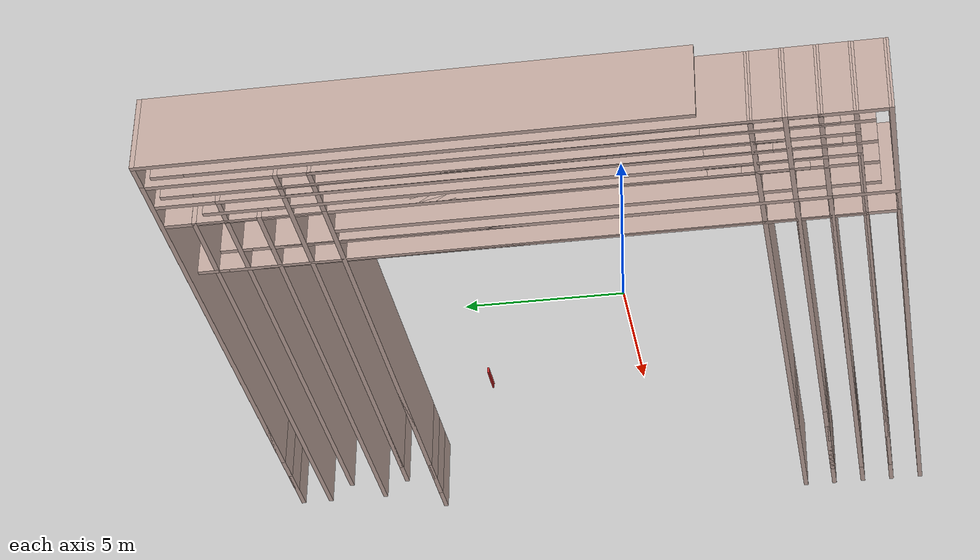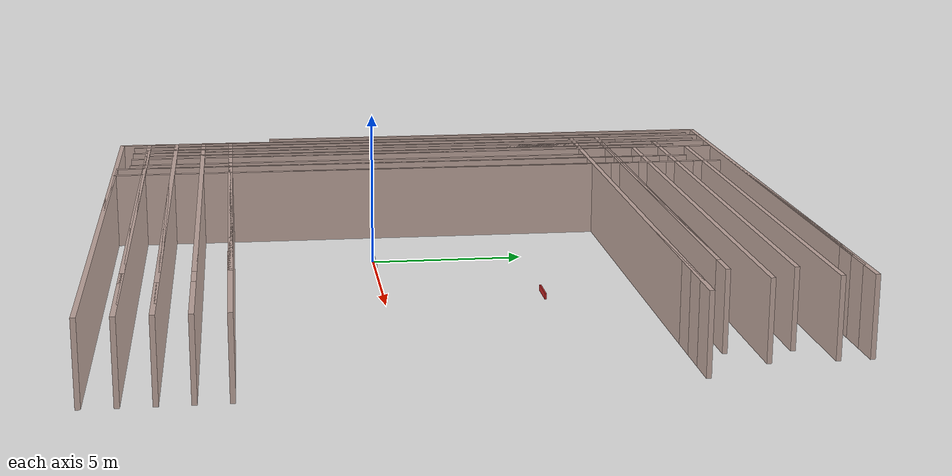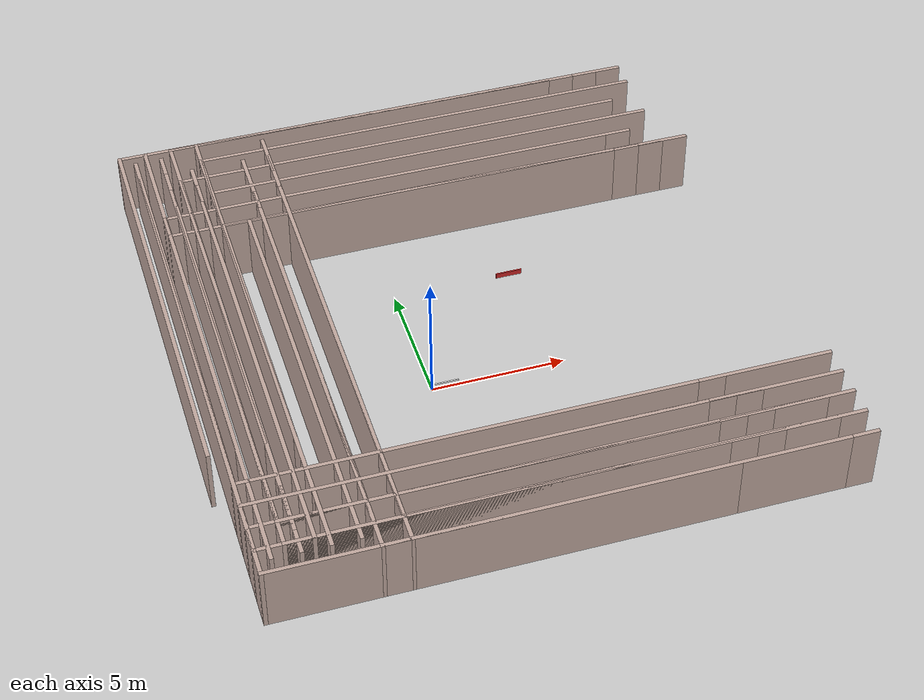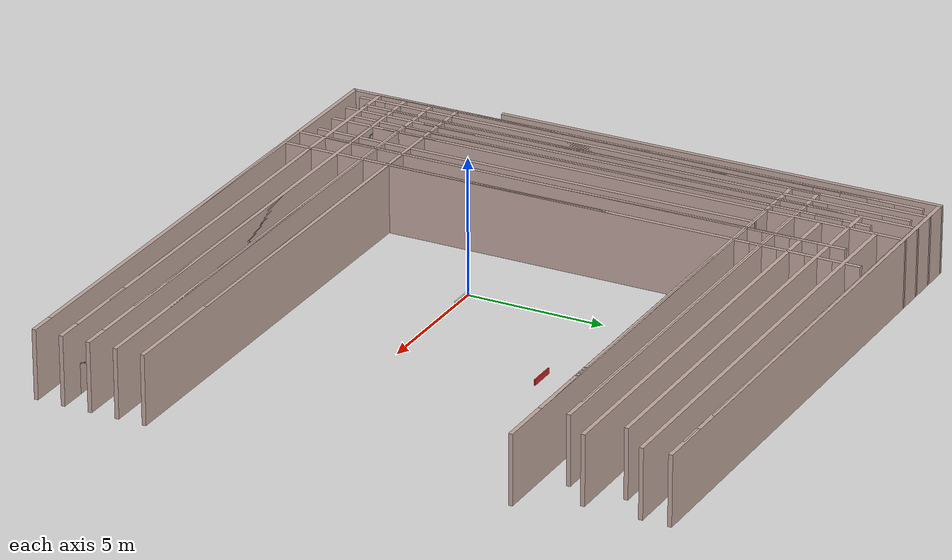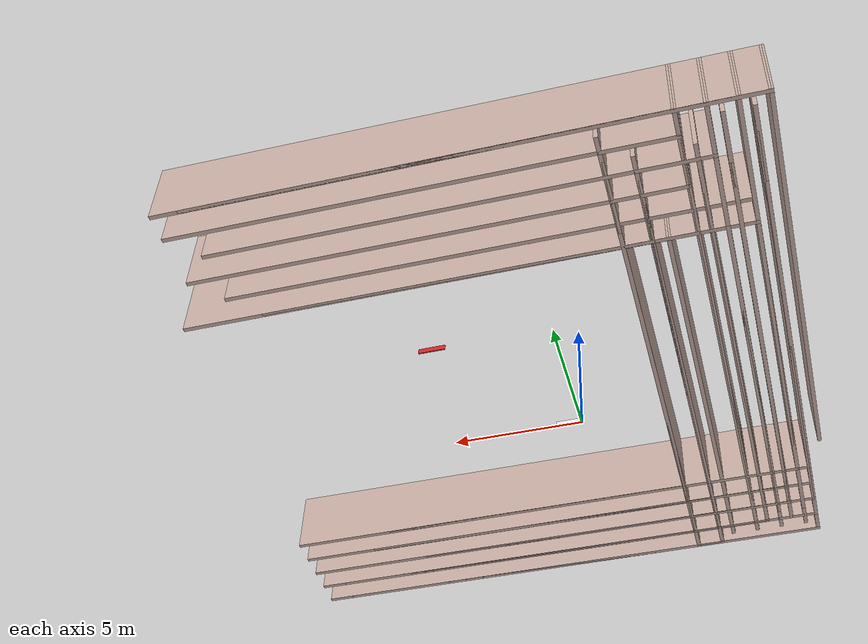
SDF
<?xml version="1.0" ?>
<sdf version="1.7">
    <model name="labyrinth">

			<include><name>0_4v</name><uri>model://wall</uri><pose>0 4 0 0 0 1.5707963267948966</pose></include>

			<include><name>0_5h</name><uri>model://wall</uri><pose>0 5 0 0 0 0</pose></include>

			<include><name>0_3v</name><uri>model://wall</uri><pose>0 3 0 0 0 1.5707963267948966</pose></include>

			<include><name>0_2v</name><uri>model://wall</uri><pose>0 2 0 0 0 1.5707963267948966</pose></include>

			<include><name>0_1v</name><uri>model://wall</uri><pose>0 1 0 0 0 1.5707963267948966</pose></include>

			<include><name>0_0h</name><uri>model://wall_White</uri><pose>0 0 0 0 0 0</pose></include>

			<include><name>0_0v</name><uri>model://wall</uri><pose>0 0 0 0 0 1.5707963267948966</pose></include>

			<include><name>1_4v</name><uri>model://wall</uri><pose>1 4 0 0 0 1.5707963267948966</pose></include>

			<include><name>1_5h</name><uri>model://wall</uri><pose>1 5 0 0 0 0</pose></include>

			<include><name>1_3v</name><uri>model://wall</uri><pose>1 3 0 0 0 1.5707963267948966</pose></include>

			<include><name>1_2v</name><uri>model://wall</uri><pose>1 2 0 0 0 1.5707963267948966</pose></include>

			<include><name>1_1h</name><uri>model://wall</uri><pose>1 1 0 0 0 0</pose></include>

			<include><name>1_1v</name><uri>model://wall</uri><pose>1 1 0 0 0 1.5707963267948966</pose></include>

			<include><name>1_0h</name><uri>model://wall</uri><pose>1 0 0 0 0 0</pose></include>

			<include><name>2_5h</name><uri>model://wall</uri><pose>2 5 0 0 0 0</pose></include>

			<include><name>2_3h</name><uri>model://wall</uri><pose>2 3 0 0 0 0</pose></include>

			<include><name>2_3v</name><uri>model://wall</uri><pose>2 3 0 0 0 1.5707963267948966</pose></include>

			<include><name>2_2v</name><uri>model://wall</uri><pose>2 2 0 0 0 1.5707963267948966</pose></include>

			<include><name>2_1h</name><uri>model://wall</uri><pose>2 1 0 0 0 0</pose></include>

			<include><name>2_1v</name><uri>model://wall</uri><pose>2 1 0 0 0 1.5707963267948966</pose></include>

			<include><name>2_0h</name><uri>model://wall</uri><pose>2 0 0 0 0 0</pose></include>

			<include><name>3_4h</name><uri>model://wall</uri><pose>3 4 0 0 0 0</pose></include>

			<include><name>3_5h</name><uri>model://wall</uri><pose>3 5 0 0 0 0</pose></include>

			<include><name>3_2h</name><uri>model://wall</uri><pose>3 2 0 0 0 0</pose></include>

			<include><name>3_0h</name><uri>model://wall</uri><pose>3 0 0 0 0 0</pose></include>

			<include><name>4_5h</name><uri>model://wall_Red</uri><pose>4 5 0 0 0 0</pose></include>

			<include><name>5_4v</name><uri>model://wall</uri><pose>5 4 0 0 0 1.5707963267948966</pose></include>

			<include><name>4_3v</name><uri>model://wall</uri><pose>4 3 0 0 0 1.5707963267948966</pose></include>

			<include><name>5_3v</name><uri>model://wall</uri><pose>5 3 0 0 0 1.5707963267948966</pose></include>

			<include><name>4_2v</name><uri>model://wall</uri><pose>4 2 0 0 0 1.5707963267948966</pose></include>

			<include><name>5_2v</name><uri>model://wall</uri><pose>5 2 0 0 0 1.5707963267948966</pose></include>

			<include><name>4_1v</name><uri>model://wall</uri><pose>4 1 0 0 0 1.5707963267948966</pose></include>

			<include><name>5_1v</name><uri>model://wall</uri><pose>5 1 0 0 0 1.5707963267948966</pose></include>

			<include><name>4_0h</name><uri>model://wall</uri><pose>4 0 0 0 0 0</pose></include>

			<include><name>4_0v</name><uri>model://wall</uri><pose>4 0 0 0 0 1.5707963267948966</pose></include>

			<include><name>5_0v</name><uri>model://wall</uri><pose>5 0 0 0 0 1.5707963267948966</pose></include>

	</model>
</sdf>

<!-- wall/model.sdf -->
<sdf version='1.6'>
  <model name='wall'>
    <pose frame=''>-1.26581 1.80502 0 0 -0 0</pose>
    <link name='Wall_0'>
      <collision name='Wall_0_Collision'>
        <geometry>
          <box>
            <size>16.5 0.15 2.5</size>
          </box>
        </geometry>
        <pose frame=''>0 0 1.25 0 -0 0</pose>
      </collision>
      <visual name='Wall_0_Visual'>
        <pose frame=''>0 0 1.25 0 -0 0</pose>
        <geometry>
          <box>
            <size>16.5 0.15 2.5</size>
          </box>
        </geometry>
        <material>
          <script>
            <uri>file://media/materials/scripts/gazebo.material</uri>
            <name>Gazebo/Grey</name>
          </script>
          <ambient>0.760784 0.662745 0.627451 1</ambient>
        </material>
        <meta>
          <layer>0</layer>
        </meta>
      </visual>
      <pose frame=''>-8.71419 -1.8e-05 0 0 0 -1.5708</pose>
    </link>
    <link name='Wall_2'>
      <collision name='Wall_2_Collision'>
        <geometry>
          <box>
            <size>17.5784 0.15 2.5</size>
          </box>
        </geometry>
        <pose frame=''>0 0 1.25 0 -0 0</pose>
      </collision>
      <visual name='Wall_2_Visual'>
        <pose frame=''>0 0 1.25 0 -0 0</pose>
        <geometry>
          <box>
            <size>17.5784 0.15 2.5</size>
          </box>
        </geometry>
        <material>
          <script>
            <uri>file://media/materials/scripts/gazebo.material</uri>
            <name>Gazebo/Grey</name>
          </script>
          <ambient>0.760784 0.662745 0.627451 1</ambient>
        </material>
        <meta>
          <layer>0</layer>
        </meta>
      </visual>
      <pose frame=''>0 8.17066 0 0 0 -0.000496</pose>
    </link>
    <static>1</static>
  </model>
</sdf>

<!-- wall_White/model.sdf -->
<sdf version="1.7">
	<model name="wall_White">
		<link name="link">
			<visual name="visual">

				<pose>0.5 0.025 0.1 0 0 0</pose>

				<geometry>
					<box>
						<size>1 0.05 0.2</size>
					</box>
				</geometry>

				<material>
					<script>
						<uri>file://media/materials/scripts/gazebo.material</uri>
						<name>Gazebo/White</name>
					</script>
				</material>
			</visual>
			<collision name="collision">

				<pose>0.5 0.025 0.1 0 0 0</pose>

				<geometry>
					<box>
						<size>1 0.05 0.2</size>
					</box>
				</geometry>

				<laser_retro>3</laser_retro>
			</collision>
		</link>
	</model>
</sdf>

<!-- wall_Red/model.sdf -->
<sdf version="1.7">
	<model name="wall_Red">
		<link name="link">
			<visual name="visual">

				<pose>0.5 0.025 0.1 0 0 0</pose>

				<geometry>
					<box>
						<size>1 0.05 0.2</size>
					</box>
				</geometry>

				<material>
					<script>
						<uri>file://media/materials/scripts/gazebo.material</uri>
						<name>Gazebo/Red</name>
					</script>
				</material>
			</visual>
			<collision name="collision">

				<pose>0.5 0.025 0.1 0 0 0</pose>

				<geometry>
					<box>
						<size>1 0.05 0.2</size>
					</box>
				</geometry>

				<laser_retro>2</laser_retro>
			</collision>
		</link>
	</model>
</sdf>
